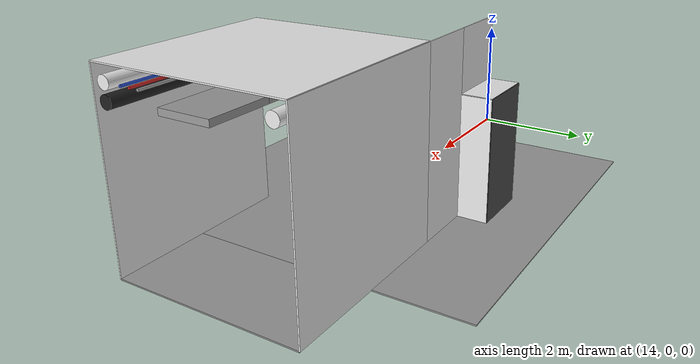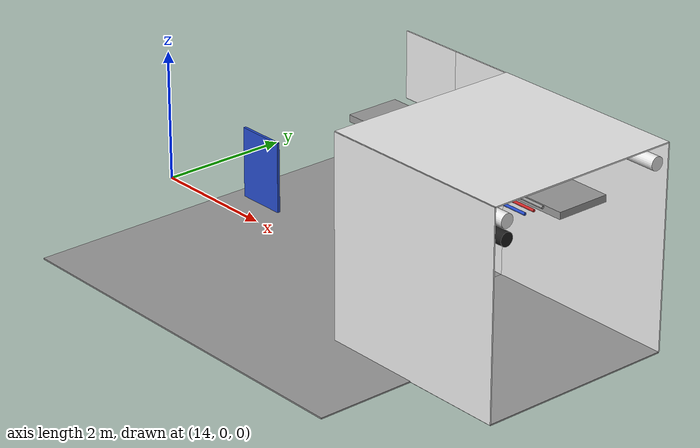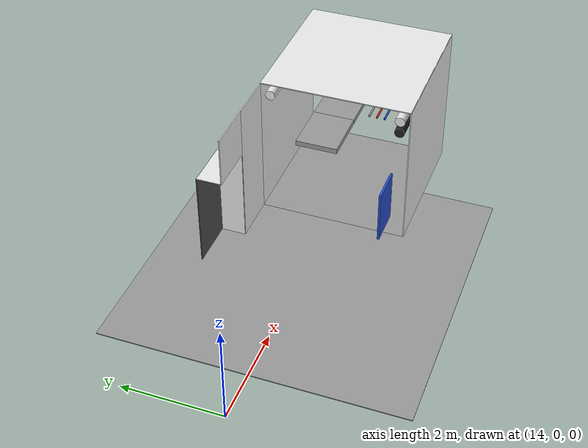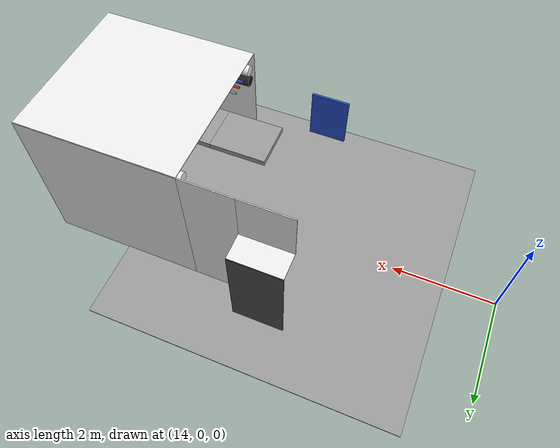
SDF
<sdf version="1.6">
 <world name="default">
  <model name="ceiling_1_6_0_2_1">
   <pose>19.0 0.0 2.55 0.0 0.0 -1.57</pose>
   <link name="link_1">
    <visual name="visual">
     <geometry><box><size>0.8 1 0.1</size></box></geometry>
     <material>
      <script><uri>file://media/materials/scripts/gazebo.material</uri><name>Gazebo/Grey</name></script>
     </material>
    </visual>
    <collision name="collision"><geometry><box><size>0.8 1 0.1</size></box></geometry></collision>
   </link>
   <static>1</static>
  </model>
  <model name="panel_6_0_0_1">
   <static>1</static>
   <pose>18.0 -1.5 1.95 0.0 0.0 -1.57</pose>
   <link name="link">
    <collision name="collision"><geometry><box><size>0.04 0.7 1</size></box></geometry></collision>
    <visual name="visual">
     <material>
      <script><name>Gazebo/Blue</name><uri>file://media/materials/scripts/gazebo.material</uri></script>
     </material>
     <geometry><box><size>0.04 0.7 1</size></box></geometry>
    </visual>
   </link>
  </model>
  <model name="wall_left_front_left_6_0_0_1">
   <static>1</static>
   <pose>19.0 1.5 1.5 0.0 0.0 0.0</pose>
   <link name="link">
    <collision name="collision"><geometry><box><size>1.0 0.02 3.0</size></box></geometry></collision>
    <visual name="visual">
     <material>
      <script><name>Gazebo/White</name><uri>file://media/materials/scripts/gazebo.material</uri></script>
     </material>
     <geometry><box><size>1.0 0.02 3.0</size></box></geometry>
    </visual>
   </link>
  </model>
  <model name="wall_left_front_up_6_0_0_1">
   <static>1</static>
   <pose>18.0 1.5 2.5 0.0 0.0 0.0</pose>
   <link name="link">
    <collision name="collision"><geometry><box><size>1.0 0.02 1.0</size></box></geometry></collision>
    <visual name="visual">
     <material>
      <script><name>Gazebo/White</name><uri>file://media/materials/scripts/gazebo.material</uri></script>
     </material>
     <geometry><box><size>1.0 0.02 1.0</size></box></geometry>
    </visual>
   </link>
  </model>
  <model name="wall_left_inside_back_6_0_0_1">
   <static>1</static>
   <pose>18.0 2.0 1.0 0.0 0.0 0.0</pose>
   <link name="link">
    <collision name="collision"><geometry><box><size>1 0.02 2</size></box></geometry></collision>
    <visual name="visual">
     <material>
      <script><name>Gazebo/DarkGrey</name><uri>file://media/materials/scripts/gazebo.material</uri></script>
     </material>
     <geometry><box><size>1 0.02 2</size></box></geometry>
    </visual>
   </link>
  </model>
  <model name="wall_left_inside_left_6_0_0_1">
   <static>1</static>
   <pose>18.5 1.75 1.0 0.0 0.0 -1.57</pose>
   <link name="link">
    <collision name="collision"><geometry><box><size>0.5 0.02 2</size></box></geometry></collision>
    <visual name="visual">
     <material>
      <script><name>Gazebo/White</name><uri>file://media/materials/scripts/gazebo.material</uri></script>
     </material>
     <geometry><box><size>0.5 0.02 2</size></box></geometry>
    </visual>
   </link>
  </model>
  <model name="wall_left_inside_top_6_0_0_1">
   <static>1</static>
   <pose>18.0 1.75 2.0 1.57 0.0 0.0</pose>
   <link name="link">
    <collision name="collision"><geometry><box><size>1 0.02 0.5</size></box></geometry></collision>
    <visual name="visual">
     <material>
      <script><name>Gazebo/White</name><uri>file://media/materials/scripts/gazebo.material</uri></script>
     </material>
     <geometry><box><size>1 0.02 0.5</size></box></geometry>
    </visual>
   </link>
  </model>
  <model name="wall_bottom_6_0_0_1">
   <static>1</static>
   <pose>18.0 0.0 0.0 0.0 0.0 -1.57</pose>
   <link name="link">
    <collision name="collision"><geometry><box><size>6.0 6.0 0.02</size></box></geometry></collision>
    <visual name="visual">
     <material>
      <script><name>Gazebo/Grey</name><uri>file://media/materials/scripts/gazebo.material</uri></script>
     </material>
     <geometry><box><size>6.0 6.0 0.02</size></box></geometry>
    </visual>
   </link>
  </model>
  <model name="wall_right_7_0_0_4">
   <static>1</static>
   <pose>21.0 -1.5 1.5 0.0 0.0 0.0</pose>
   <link name="link">
    <collision name="collision"><geometry><box><size>3.0 0.02 3.0</size></box></geometry></collision>
    <visual name="visual">
     <material>
      <script><name>Gazebo/White</name><uri>file://media/materials/scripts/gazebo.material</uri></script>
     </material>
     <geometry><box><size>3.0 0.02 3.0</size></box></geometry>
    </visual>
   </link>
  </model>
  <model name="wall_left_7_0_0_4">
   <static>1</static>
   <pose>21.0 1.5 1.5 0.0 0.0 0.0</pose>
   <link name="link">
    <collision name="collision"><geometry><box><size>3.0 0.02 3.0</size></box></geometry></collision>
    <visual name="visual">
     <material>
      <script><name>Gazebo/White</name><uri>file://media/materials/scripts/gazebo.material</uri></script>
     </material>
     <geometry><box><size>3.0 0.02 3.0</size></box></geometry>
    </visual>
   </link>
  </model>
  <model name="wall_top_7_0_0_4">
   <static>1</static>
   <pose>21.0 0.0 3.0 1.57 0.0 -1.57</pose>
   <link name="link">
    <collision name="collision"><geometry><box><size>3.0 0.02 3.0</size></box></geometry></collision>
    <visual name="visual">
     <material>
      <script><name>Gazebo/White</name><uri>file://media/materials/scripts/gazebo.material</uri></script>
     </material>
     <geometry><box><size>3.0 0.02 3.0</size></box></geometry>
    </visual>
   </link>
  </model>
  <model name="ceiling_1_7_0_0_4">
   <pose>21.0 0.0 2.55 0.0 0.0 -1.57</pose>
   <link name="link_1">
    <visual name="visual">
     <geometry><box><size>0.8 1 0.1</size></box></geometry>
     <material>
      <script><uri>file://media/materials/scripts/gazebo.material</uri><name>Gazebo/Grey</name></script>
     </material>
    </visual>
    <collision name="collision"><geometry><box><size>0.8 1 0.1</size></box></geometry></collision>
   </link>
   <static>1</static>
  </model>
  <model name="ceiling_1_7_0_1_4">
   <pose>20.0 0.0 2.55 0.0 0.0 -1.57</pose>
   <link name="link_1">
    <visual name="visual">
     <geometry><box><size>0.8 1 0.1</size></box></geometry>
     <material>
      <script><uri>file://media/materials/scripts/gazebo.material</uri><name>Gazebo/Grey</name></script>
     </material>
    </visual>
    <collision name="collision"><geometry><box><size>0.8 1 0.1</size></box></geometry></collision>
   </link>
   <static>1</static>
  </model>
  <model name="ceiling_1_7_0_2_4">
   <pose>22.0 0.0 2.55 0.0 0.0 -1.57</pose>
   <link name="link_1">
    <visual name="visual">
     <geometry><box><size>0.8 1 0.1</size></box></geometry>
     <material>
      <script><uri>file://media/materials/scripts/gazebo.material</uri><name>Gazebo/Grey</name></script>
     </material>
    </visual>
    <collision name="collision"><geometry><box><size>0.8 1 0.1</size></box></geometry></collision>
   </link>
   <static>1</static>
  </model>
  <model name="white_pipe_left_7_0_0_4">
   <static>1</static>
   <pose>21.0 0.0 2.76 0.0 0.0 -1.57</pose>
   <link name="link_0">
    <visual name="visual">
     <pose>-1.3 0 0 1.57 0 0</pose>
     <geometry><cylinder><radius>0.1</radius><length>3.0</length></cylinder></geometry>
     <material>
      <script><uri>file://media/materials/scripts/gazebo.material</uri><name>Gazebo/White</name></script>
     </material>
    </visual>
    <collision name="collision">
     <pose>-1.3 0 0 1.57 0 0</pose>
     <geometry><cylinder><radius>0.1</radius><length>3.0</length></cylinder></geometry>
    </collision>
   </link>
  </model>
  <model name="white_pipe_right_7_0_0_4">
   <static>1</static>
   <pose>21.0 0.0 2.76 0.0 0.0 -1.57</pose>
   <link name="link_0">
    <visual name="visual">
     <pose>1.3 0 0 1.57 0 0</pose>
     <geometry><cylinder><radius>0.1</radius><length>3.0</length></cylinder></geometry>
     <material>
      <script><uri>file://media/materials/scripts/gazebo.material</uri><name>Gazebo/White</name></script>
     </material>
    </visual>
    <collision name="collision">
     <pose>1.3 0 0 1.57 0 0</pose>
     <geometry><cylinder><radius>0.1</radius><length>3.0</length></cylinder></geometry>
    </collision>
   </link>
  </model>
  <model name="black_pipe_right_7_0_0_4">
   <static>1</static>
   <pose>21.0 0.0 2.76 0.0 0.0 -1.57</pose>
   <link name="link_0">
    <visual name="visual">
     <pose>1.3 0 -0.25 1.57 0 0</pose>
     <geometry><cylinder><radius>0.1</radius><length>3.0</length></cylinder></geometry>
     <material>
      <script><uri>file://media/materials/scripts/gazebo.material</uri><name>Gazebo/Black</name></script>
     </material>
    </visual>
    <collision name="collision">
     <pose>1.3 0 -0.25 1.57 0 0</pose>
     <geometry><cylinder><radius>0.1</radius><length>3.0</length></cylinder></geometry>
    </collision>
   </link>
  </model>
  <model name="grey_pipe_right_7_0_0_4">
   <static>1</static>
   <pose>21.0 0.0 2.76 0.0 0.0 -1.57</pose>
   <link name="link_0">
    <visual name="visual">
     <pose>0.7 0 0 1.57 0 0</pose>
     <geometry><cylinder><radius>0.02</radius><length>3.0</length></cylinder></geometry>
     <material>
      <script><uri>file://media/materials/scripts/gazebo.material</uri><name>Gazebo/Grey</name></script>
     </material>
    </visual>
    <collision name="collision">
     <pose>0.7 0 0 1.57 0 0</pose>
     <geometry><cylinder><radius>0.02</radius><length>3.0</length></cylinder></geometry>
    </collision>
   </link>
  </model>
  <model name="red_pipe_right_7_0_0_4">
   <static>1</static>
   <pose>21.0 0.0 2.76 0.0 0.0 -1.57</pose>
   <link name="link_0">
    <visual name="visual">
     <pose>0.85 0 0 1.57 0 0</pose>
     <geometry><cylinder><radius>0.02</radius><length>3.0</length></cylinder></geometry>
     <material>
      <script><uri>file://media/materials/scripts/gazebo.material</uri><name>Gazebo/Red</name></script>
     </material>
    </visual>
    <collision name="collision">
     <pose>0.85 0 0 1.57 0 0</pose>
     <geometry><cylinder><radius>0.02</radius><length>3.0</length></cylinder></geometry>
    </collision>
   </link>
  </model>
  <model name="blue_pipe_right_7_0_0_4">
   <static>1</static>
   <pose>21.0 0.0 2.76 0.0 0.0 -1.57</pose>
   <link name="link_0">
    <visual name="visual">
     <pose>1 0 0 1.57 0 0</pose>
     <geometry><cylinder><radius>0.02</radius><length>3.0</length></cylinder></geometry>
     <material>
      <script><uri>file://media/materials/scripts/gazebo.material</uri><name>Gazebo/Blue</name></script>
     </material>
    </visual>
    <collision name="collision">
     <pose>1 0 0 1.57 0 0</pose>
     <geometry><cylinder><radius>0.02</radius><length>3.0</length></cylinder></geometry>
    </collision>
   </link>
  </model>
  <model name="wall_bottom_7_0_0_4">
   <static>1</static>
   <pose>21.0 0.0 0.0 0.0 0.0 -1.57</pose>
   <link name="link">
    <collision name="collision"><geometry><box><size>3.0 3.0 0.02</size></box></geometry></collision>
    <visual name="visual">
     <material>
      <script><name>Gazebo/Grey</name><uri>file://media/materials/scripts/gazebo.material</uri></script>
     </material>
     <geometry><box><size>3.0 3.0 0.02</size></box></geometry>
    </visual>
   </link>
  </model>
 </world>
</sdf>
